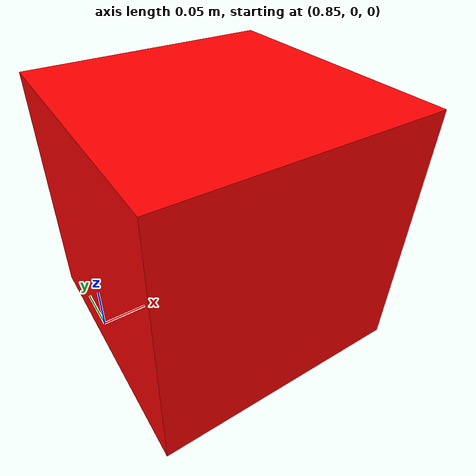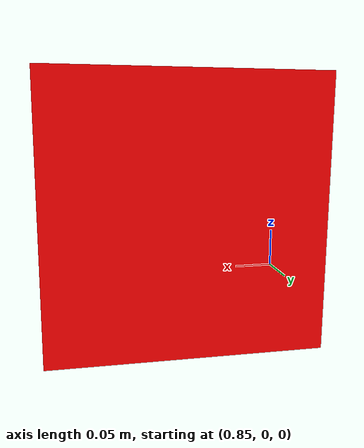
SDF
<?xml version="1.0" ?>
<sdf version="1.6">
  <model name="red_cube">
    <static>true</static>
    <link name="link">
      <pose>1 0 0.1 0 0 0</pose> <!-- Position: 1m in front of robot -->
      <visual name="visual">
        <geometry>
          <box>
            <size>0.3 0.3 0.3</size> <!-- Slightly larger cube -->
          </box>
        </geometry>
        <material>
          <ambient>1 0 0 1</ambient>  <!-- Bright red color -->
          <diffuse>1 0 0 1</diffuse>
          <specular>0.1 0.1 0.1 1</specular>
          <emissive>0 0 0 1</emissive>
        </material>
      </visual>
      <collision name="collision">
        <geometry>
          <box>
            <size>0.3 0.3 0.3</size>
          </box>
        </geometry>
      </collision>
    </link>
  </model>
</sdf>
